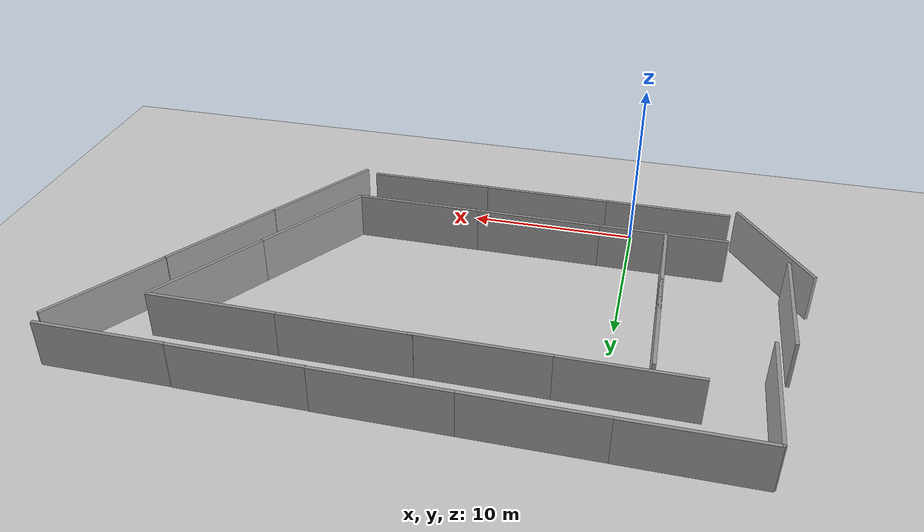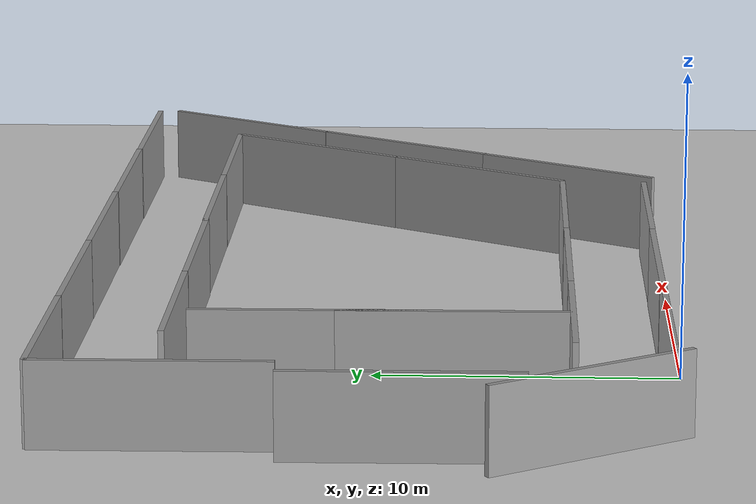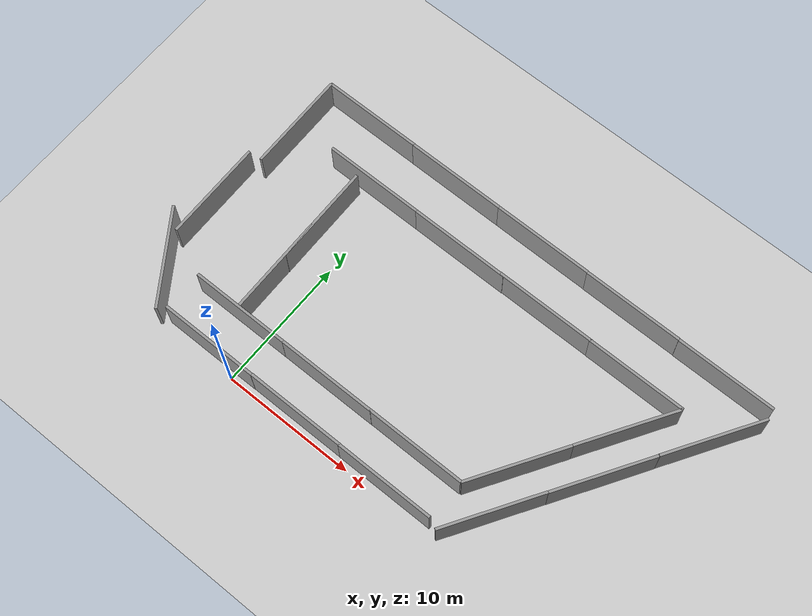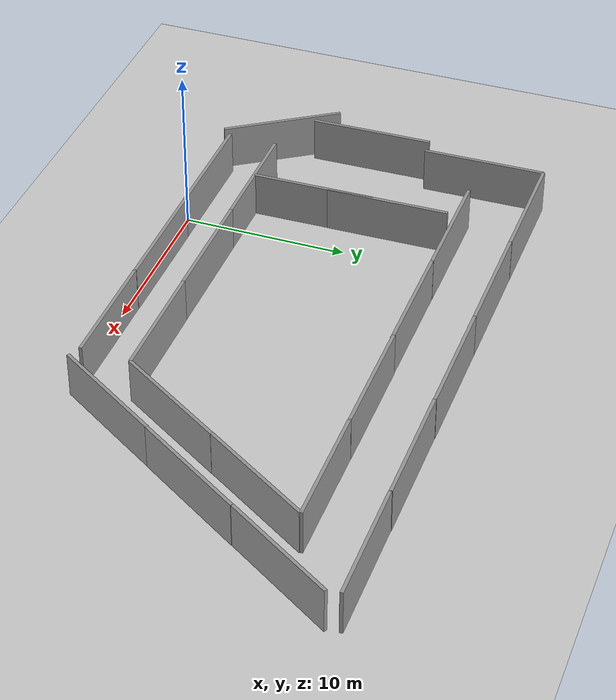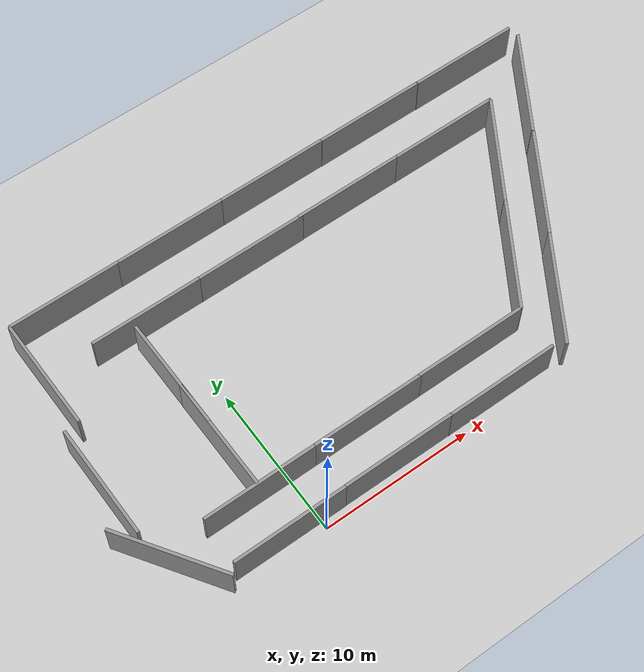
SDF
<sdf version="1.6">
 <world name="default">
  <model name="ground_plane">
   <static>1</static>
   <link name="link">
    <collision name="collision">
     <geometry><plane><normal>0 0 1</normal><size>100 100</size></plane></geometry>
     <surface><friction><ode><mu>100</mu><mu2>50</mu2></ode></friction></surface>
    </collision>
    <visual name="visual">
     <cast_shadows>0</cast_shadows>
     <geometry><plane><normal>0 0 1</normal><size>100 100</size></plane></geometry>
     <material>
      <script><uri>file://media/materials/scripts/gazebo.material</uri><name>Gazebo/Grey</name></script>
     </material>
    </visual>
   </link>
  </model>
  <light name="sun" type="directional">
   <pose>0 0 10 0 -0 0</pose>
   <diffuse>0.8 0.8 0.8 1</diffuse>
   <specular>0.1 0.1 0.1 1</specular>
   <attenuation>
    <range>1000</range>
    <constant>0.9</constant>
    <linear>0.01</linear>
    <quadratic>0.001</quadratic>
   </attenuation>
   <direction>-0.5 0.5 -1</direction>
  </light>
  <physics name="default_physics" default="0" type="ode">
   <ode>
    <solver>
     <type>quick</type>
     <iters>1000</iters>
     <sor>1.3</sor>
     <use_dynamic_moi_rescaling>0</use_dynamic_moi_rescaling>
    </solver>
    <constraints>
     <cfm>0</cfm>
     <erp>0.2</erp>
     <contact_max_correcting_vel>100</contact_max_correcting_vel>
     <contact_surface_layer>0.001</contact_surface_layer>
    </constraints>
   </ode>
   <max_step_size>0.01</max_step_size>
   <real_time_factor>1</real_time_factor>
   <real_time_update_rate>100</real_time_update_rate>
  </physics>
  <gravity>0 0 -9.8</gravity>
  <magnetic_field>6e-06 2.3e-05 -4.2e-05</magnetic_field>
  <atmosphere type="adiabatic"/>
  <scene><ambient>0.4 0.4 0.4 1</ambient><background>0.7 0.7 0.7 1</background><shadows>1</shadows></scene>
  <spherical_coordinates>
   <surface_model>EARTH_WGS84</surface_model>
   <latitude_deg>0</latitude_deg>
   <longitude_deg>0</longitude_deg>
   <elevation>0</elevation>
   <heading_deg>0</heading_deg>
  </spherical_coordinates>
  <model name="grey_wall">
   <static>1</static>
   <link name="link">
    <pose>0 0 1.4 0 -0 0</pose>
    <collision name="collision"><geometry><box><size>7.5 0.2 2.8</size></box></geometry></collision>
    <visual name="visual">
     <cast_shadows>0</cast_shadows>
     <geometry><box><size>7.5 0.2 2.8</size></box></geometry>
     <material>
      <script>
       <uri>model://grey_wall/materials/scripts</uri>
       <uri>model://grey_wall/materials/textures</uri>
       <name>vrc/grey_wall</name>
      </script>
     </material>
    </visual>
   </link>
   <pose>-1.99882 3.53996 0 0 -0 0</pose>
  </model>
  <model name="grey_wall_0">
   <static>1</static>
   <link name="link">
    <pose>0 0 1.4 0 -0 0</pose>
    <collision name="collision"><geometry><box><size>7.5 0.2 2.8</size></box></geometry></collision>
    <visual name="visual">
     <cast_shadows>0</cast_shadows>
     <geometry><box><size>7.5 0.2 2.8</size></box></geometry>
     <material>
      <script>
       <uri>model://grey_wall/materials/scripts</uri>
       <uri>model://grey_wall/materials/textures</uri>
       <name>vrc/grey_wall</name>
      </script>
     </material>
    </visual>
   </link>
   <pose>5.47732 3.5423 0 0 -0 0</pose>
  </model>
  <model name="grey_wall_1">
   <static>1</static>
   <link name="link">
    <pose>0 0 1.4 0 -0 0</pose>
    <collision name="collision"><geometry><box><size>7.5 0.2 2.8</size></box></geometry></collision>
    <visual name="visual">
     <cast_shadows>0</cast_shadows>
     <geometry><box><size>7.5 0.2 2.8</size></box></geometry>
     <material>
      <script>
       <uri>model://grey_wall/materials/scripts</uri>
       <uri>model://grey_wall/materials/textures</uri>
       <name>vrc/grey_wall</name>
      </script>
     </material>
    </visual>
   </link>
   <pose>12.8795 3.55138 0 0 -0 0</pose>
  </model>
  <model name="grey_wall_2">
   <static>1</static>
   <link name="link">
    <pose>0 0 1.4 0 -0 0</pose>
    <collision name="collision"><geometry><box><size>7.5 0.2 2.8</size></box></geometry></collision>
    <visual name="visual">
     <cast_shadows>0</cast_shadows>
     <geometry><box><size>7.5 0.2 2.8</size></box></geometry>
     <material>
      <script>
       <uri>model://grey_wall/materials/scripts</uri>
       <uri>model://grey_wall/materials/textures</uri>
       <name>vrc/grey_wall</name>
      </script>
     </material>
    </visual>
   </link>
   <pose>18.637 6.70287 0 0 -0 1.01032</pose>
  </model>
  <model name="grey_wall_3">
   <static>1</static>
   <link name="link">
    <pose>0 0 1.4 0 -0 0</pose>
    <collision name="collision"><geometry><box><size>7.5 0.2 2.8</size></box></geometry></collision>
    <visual name="visual">
     <cast_shadows>0</cast_shadows>
     <geometry><box><size>7.5 0.2 2.8</size></box></geometry>
     <material>
      <script>
       <uri>model://grey_wall/materials/scripts</uri>
       <uri>model://grey_wall/materials/textures</uri>
       <name>vrc/grey_wall</name>
      </script>
     </material>
    </visual>
   </link>
   <pose>20.8881 16.2604 0 0 -0 0</pose>
  </model>
  <model name="grey_wall_2_clone">
   <static>1</static>
   <link name="link">
    <pose>0 0 1.4 0 -0 0</pose>
    <collision name="collision"><geometry><box><size>7.5 0.2 2.8</size></box></geometry></collision>
    <visual name="visual">
     <cast_shadows>0</cast_shadows>
     <geometry><box><size>7.5 0.2 2.8</size></box></geometry>
     <material>
      <script>
       <uri>model://grey_wall/materials/scripts</uri>
       <uri>model://grey_wall/materials/textures</uri>
       <name>vrc/grey_wall</name>
      </script>
     </material>
    </visual>
   </link>
   <pose>22.6039 13.0459 0 0 -0 1.01032</pose>
  </model>
  <model name="grey_wall_3_clone">
   <static>1</static>
   <link name="link">
    <pose>0 0 1.4 0 -0 0</pose>
    <collision name="collision"><geometry><box><size>7.5 0.2 2.8</size></box></geometry></collision>
    <visual name="visual">
     <cast_shadows>0</cast_shadows>
     <geometry><box><size>7.5 0.2 2.8</size></box></geometry>
     <material>
      <script>
       <uri>model://grey_wall/materials/scripts</uri>
       <uri>model://grey_wall/materials/textures</uri>
       <name>vrc/grey_wall</name>
      </script>
     </material>
    </visual>
   </link>
   <pose>13.469 16.2711 0 0 -0 0</pose>
  </model>
  <model name="grey_wall_3_clone_clone">
   <static>1</static>
   <link name="link">
    <pose>0 0 1.4 0 -0 0</pose>
    <collision name="collision"><geometry><box><size>7.5 0.2 2.8</size></box></geometry></collision>
    <visual name="visual">
     <cast_shadows>0</cast_shadows>
     <geometry><box><size>7.5 0.2 2.8</size></box></geometry>
     <material>
      <script>
       <uri>model://grey_wall/materials/scripts</uri>
       <uri>model://grey_wall/materials/textures</uri>
       <name>vrc/grey_wall</name>
      </script>
     </material>
    </visual>
   </link>
   <pose>6.25652 16.2499 0 0 -0 0</pose>
  </model>
  <model name="grey_wall_3_clone_clone_0">
   <static>1</static>
   <link name="link">
    <pose>0 0 1.4 0 -0 0</pose>
    <collision name="collision"><geometry><box><size>7.5 0.2 2.8</size></box></geometry></collision>
    <visual name="visual">
     <cast_shadows>0</cast_shadows>
     <geometry><box><size>7.5 0.2 2.8</size></box></geometry>
     <material>
      <script>
       <uri>model://grey_wall/materials/scripts</uri>
       <uri>model://grey_wall/materials/textures</uri>
       <name>vrc/grey_wall</name>
      </script>
     </material>
    </visual>
   </link>
   <pose>-1.2015 16.2559 0 0 -0 0</pose>
  </model>
  <model name="grey_wall_3_clone_clone_1">
   <static>1</static>
   <link name="link">
    <pose>0 0 1.4 0 -0 0</pose>
    <collision name="collision"><geometry><box><size>7.5 0.2 2.8</size></box></geometry></collision>
    <visual name="visual">
     <cast_shadows>0</cast_shadows>
     <geometry><box><size>7.5 0.2 2.8</size></box></geometry>
     <material>
      <script>
       <uri>model://grey_wall/materials/scripts</uri>
       <uri>model://grey_wall/materials/textures</uri>
       <name>vrc/grey_wall</name>
      </script>
     </material>
    </visual>
   </link>
   <pose>-2.20667 7.30488 0 0 0 -1.55755</pose>
  </model>
  <model name="grey_wall_clone">
   <static>1</static>
   <link name="link">
    <pose>0 0 1.4 0 -0 0</pose>
    <collision name="collision"><geometry><box><size>7.5 0.2 2.8</size></box></geometry></collision>
    <visual name="visual">
     <cast_shadows>0</cast_shadows>
     <geometry><box><size>7.5 0.2 2.8</size></box></geometry>
     <material>
      <script>
       <uri>model://grey_wall/materials/scripts</uri>
       <uri>model://grey_wall/materials/textures</uri>
       <name>vrc/grey_wall</name>
      </script>
     </material>
    </visual>
   </link>
   <pose>-2.0638 0.545105 0 0 -0 0</pose>
  </model>
  <model name="grey_wall_clone_0">
   <static>1</static>
   <link name="link">
    <pose>0 0 1.4 0 -0 0</pose>
    <collision name="collision"><geometry><box><size>7.5 0.2 2.8</size></box></geometry></collision>
    <visual name="visual">
     <cast_shadows>0</cast_shadows>
     <geometry><box><size>7.5 0.2 2.8</size></box></geometry>
     <material>
      <script>
       <uri>model://grey_wall/materials/scripts</uri>
       <uri>model://grey_wall/materials/textures</uri>
       <name>vrc/grey_wall</name>
      </script>
     </material>
    </visual>
   </link>
   <pose>5.4043 0.55852 0 0 -0 0</pose>
  </model>
  <model name="grey_wall_clone_1">
   <static>1</static>
   <link name="link">
    <pose>0 0 1.4 0 -0 0</pose>
    <collision name="collision"><geometry><box><size>7.5 0.2 2.8</size></box></geometry></collision>
    <visual name="visual">
     <cast_shadows>0</cast_shadows>
     <geometry><box><size>7.5 0.2 2.8</size></box></geometry>
     <material>
      <script>
       <uri>model://grey_wall/materials/scripts</uri>
       <uri>model://grey_wall/materials/textures</uri>
       <name>vrc/grey_wall</name>
      </script>
     </material>
    </visual>
   </link>
   <pose>12.8225 0.545033 0 0 -0 0</pose>
  </model>
  <model name="grey_wall_3_clone_0">
   <static>1</static>
   <link name="link">
    <pose>0 0 1.4 0 -0 0</pose>
    <collision name="collision"><geometry><box><size>7.5 0.2 2.8</size></box></geometry></collision>
    <visual name="visual">
     <cast_shadows>0</cast_shadows>
     <geometry><box><size>7.5 0.2 2.8</size></box></geometry>
     <material>
      <script>
       <uri>model://grey_wall/materials/scripts</uri>
       <uri>model://grey_wall/materials/textures</uri>
       <name>vrc/grey_wall</name>
      </script>
     </material>
    </visual>
   </link>
   <pose>25.3835 19.9489 0 0 -0 0</pose>
  </model>
  <model name="grey_wall_3_clone_0_clone">
   <static>1</static>
   <link name="link">
    <pose>0 0 1.4 0 -0 0</pose>
    <collision name="collision"><geometry><box><size>7.5 0.2 2.8</size></box></geometry></collision>
    <visual name="visual">
     <cast_shadows>0</cast_shadows>
     <geometry><box><size>7.5 0.2 2.8</size></box></geometry>
     <material>
      <script>
       <uri>model://grey_wall/materials/scripts</uri>
       <uri>model://grey_wall/materials/textures</uri>
       <name>vrc/grey_wall</name>
      </script>
     </material>
    </visual>
   </link>
   <pose>17.8657 19.9701 0 0 -0 0</pose>
  </model>
  <model name="grey_wall_3_clone_0_clone_0">
   <static>1</static>
   <link name="link">
    <pose>0 0 1.4 0 -0 0</pose>
    <collision name="collision"><geometry><box><size>7.5 0.2 2.8</size></box></geometry></collision>
    <visual name="visual">
     <cast_shadows>0</cast_shadows>
     <geometry><box><size>7.5 0.2 2.8</size></box></geometry>
     <material>
      <script>
       <uri>model://grey_wall/materials/scripts</uri>
       <uri>model://grey_wall/materials/textures</uri>
       <name>vrc/grey_wall</name>
      </script>
     </material>
    </visual>
   </link>
   <pose>10.3638 19.9885 0 0 -0 0</pose>
  </model>
  <model name="grey_wall_3_clone_0_clone_1">
   <static>1</static>
   <link name="link">
    <pose>0 0 1.4 0 -0 0</pose>
    <collision name="collision"><geometry><box><size>7.5 0.2 2.8</size></box></geometry></collision>
    <visual name="visual">
     <cast_shadows>0</cast_shadows>
     <geometry><box><size>7.5 0.2 2.8</size></box></geometry>
     <material>
      <script>
       <uri>model://grey_wall/materials/scripts</uri>
       <uri>model://grey_wall/materials/textures</uri>
       <name>vrc/grey_wall</name>
      </script>
     </material>
    </visual>
   </link>
   <pose>2.88677 19.9905 0 0 -0 0</pose>
  </model>
  <model name="grey_wall_3_clone_0_clone_2">
   <static>1</static>
   <link name="link">
    <pose>0 0 1.4 0 -0 0</pose>
    <collision name="collision"><geometry><box><size>7.5 0.2 2.8</size></box></geometry></collision>
    <visual name="visual">
     <cast_shadows>0</cast_shadows>
     <geometry><box><size>7.5 0.2 2.8</size></box></geometry>
     <material>
      <script>
       <uri>model://grey_wall/materials/scripts</uri>
       <uri>model://grey_wall/materials/textures</uri>
       <name>vrc/grey_wall</name>
      </script>
     </material>
    </visual>
   </link>
   <pose>-4.53151 19.9978 0 0 -0 0</pose>
  </model>
  <model name="grey_wall_3_clone_clone_1_clone">
   <static>1</static>
   <link name="link">
    <pose>0 0 1.4 0 -0 0</pose>
    <collision name="collision"><geometry><box><size>7.5 0.2 2.8</size></box></geometry></collision>
    <visual name="visual">
     <cast_shadows>0</cast_shadows>
     <geometry><box><size>7.5 0.2 2.8</size></box></geometry>
     <material>
      <script>
       <uri>model://grey_wall/materials/scripts</uri>
       <uri>model://grey_wall/materials/textures</uri>
       <name>vrc/grey_wall</name>
      </script>
     </material>
    </visual>
   </link>
   <pose>-8.20775 16.2652 0 0 0 -1.55755</pose>
  </model>
  <model name="grey_wall_3_clone_clone_1_clone_0">
   <static>1</static>
   <link name="link">
    <pose>0 0 1.4 0 -0 0</pose>
    <collision name="collision"><geometry><box><size>7.5 0.2 2.8</size></box></geometry></collision>
    <visual name="visual">
     <cast_shadows>0</cast_shadows>
     <geometry><box><size>7.5 0.2 2.8</size></box></geometry>
     <material>
      <script>
       <uri>model://grey_wall/materials/scripts</uri>
       <uri>model://grey_wall/materials/textures</uri>
       <name>vrc/grey_wall</name>
      </script>
     </material>
    </visual>
   </link>
   <pose>-9.09808 8.73973 0 0 0 -1.55755</pose>
  </model>
  <model name="grey_wall_3_clone_clone_1_clone_1">
   <static>1</static>
   <link name="link">
    <pose>0 0 1.4 0 -0 0</pose>
    <collision name="collision"><geometry><box><size>7.5 0.2 2.8</size></box></geometry></collision>
    <visual name="visual">
     <cast_shadows>0</cast_shadows>
     <geometry><box><size>7.5 0.2 2.8</size></box></geometry>
     <material>
      <script>
       <uri>model://grey_wall/materials/scripts</uri>
       <uri>model://grey_wall/materials/textures</uri>
       <name>vrc/grey_wall</name>
      </script>
     </material>
    </visual>
   </link>
   <pose>-8.30668 3.0841 0 0 0 -0.978838</pose>
  </model>
  <model name="grey_wall_3_clone_clone_1_clone_2">
   <static>1</static>
   <link name="link">
    <pose>0 0 1.4 0 -0 0</pose>
    <collision name="collision"><geometry><box><size>7.5 0.2 2.8</size></box></geometry></collision>
    <visual name="visual">
     <cast_shadows>0</cast_shadows>
     <geometry><box><size>7.5 0.2 2.8</size></box></geometry>
     <material>
      <script>
       <uri>model://grey_wall/materials/scripts</uri>
       <uri>model://grey_wall/materials/textures</uri>
       <name>vrc/grey_wall</name>
      </script>
     </material>
    </visual>
   </link>
   <pose>-2.25612 11.9823 0 0 0 -1.55755</pose>
  </model>
  <model name="grey_wall_2_clone_0">
   <static>1</static>
   <link name="link">
    <pose>0 0 1.4 0 -0 0</pose>
    <collision name="collision"><geometry><box><size>7.5 0.2 2.8</size></box></geometry></collision>
    <visual name="visual">
     <cast_shadows>0</cast_shadows>
     <geometry><box><size>7.5 0.2 2.8</size></box></geometry>
     <material>
      <script>
       <uri>model://grey_wall/materials/scripts</uri>
       <uri>model://grey_wall/materials/textures</uri>
       <name>vrc/grey_wall</name>
      </script>
     </material>
    </visual>
   </link>
   <pose>19.2916 3.33215 0 0 -0 1.01032</pose>
  </model>
  <model name="grey_wall_2_clone_0_clone">
   <static>1</static>
   <link name="link">
    <pose>0 0 1.4 0 -0 0</pose>
    <collision name="collision"><geometry><box><size>7.5 0.2 2.8</size></box></geometry></collision>
    <visual name="visual">
     <cast_shadows>0</cast_shadows>
     <geometry><box><size>7.5 0.2 2.8</size></box></geometry>
     <material>
      <script>
       <uri>model://grey_wall/materials/scripts</uri>
       <uri>model://grey_wall/materials/textures</uri>
       <name>vrc/grey_wall</name>
      </script>
     </material>
    </visual>
   </link>
   <pose>23.2651 9.63734 0 0 -0 1.01032</pose>
  </model>
  <model name="grey_wall_2_clone_0_clone_clone">
   <static>1</static>
   <link name="link">
    <pose>0 0 1.4 0 -0 0</pose>
    <collision name="collision"><geometry><box><size>7.5 0.2 2.8</size></box></geometry></collision>
    <visual name="visual">
     <cast_shadows>0</cast_shadows>
     <geometry><box><size>7.5 0.2 2.8</size></box></geometry>
     <material>
      <script>
       <uri>model://grey_wall/materials/scripts</uri>
       <uri>model://grey_wall/materials/textures</uri>
       <name>vrc/grey_wall</name>
      </script>
     </material>
    </visual>
   </link>
   <pose>27.2551 16.0207 0 0 -0 1.01032</pose>
  </model>
 </world>
</sdf>
